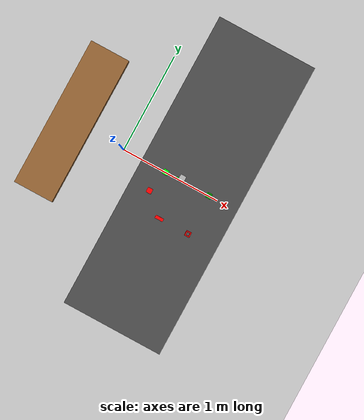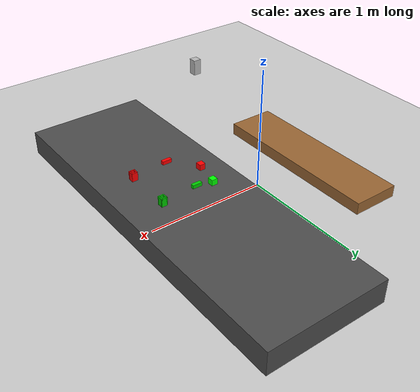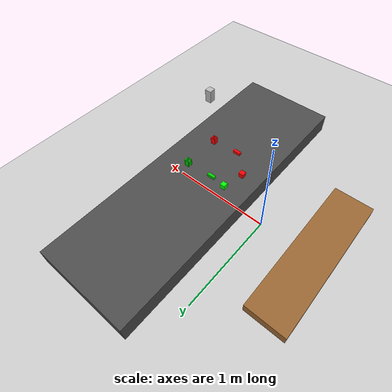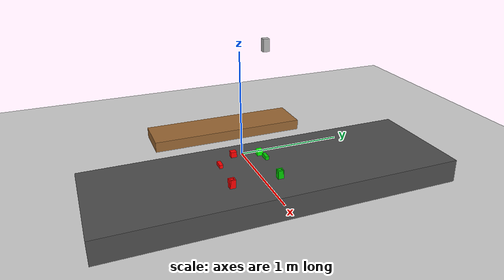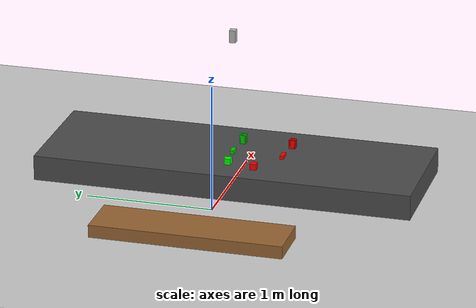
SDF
<?xml version="1.0" ?>
<sdf version="1.8">
  <world name="pick_and_place_world">

    <!-- Physics -->
    <physics name="1ms" type="ignored">
      <max_step_size>0.001</max_step_size>
      <real_time_factor>1.0</real_time_factor>
    </physics>

    <!-- Plugins - Updated for Gazebo Harmonic 8.x -->
    <plugin
      filename="gz-sim-physics-system"
      name="gz::sim::systems::Physics">
    </plugin>
    <plugin
      filename="gz-sim-user-commands-system"
      name="gz::sim::systems::UserCommands">
    </plugin>
    <plugin
      filename="gz-sim-scene-broadcaster-system"
      name="gz::sim::systems::SceneBroadcaster">
    </plugin>
    <plugin
      filename="gz-sim-sensors-system"
      name="gz::sim::systems::Sensors">
      <render_engine>ogre2</render_engine>
    </plugin>
    <plugin
      filename="gz-sim-imu-system"
      name="gz::sim::systems::Imu">
    </plugin>

    <!-- Lighting -->
    <light type="directional" name="sun">
      <cast_shadows>true</cast_shadows>
      <pose>0 0 10 0 0 0</pose>
      <diffuse>0.8 0.8 0.8 1</diffuse>
      <specular>0.2 0.2 0.2 1</specular>
      <attenuation>
        <range>1000</range>
        <constant>0.9</constant>
        <linear>0.01</linear>
        <quadratic>0.001</quadratic>
      </attenuation>
      <direction>-0.5 0.1 -0.9</direction>
    </light>

    <!-- Ground plane -->
    <model name="ground_plane">
      <static>true</static>
      <link name="link">
        <collision name="collision">
          <geometry>
            <plane>
              <normal>0 0 1</normal>
              <size>100 100</size>
            </plane>
          </geometry>
        </collision>
        <visual name="visual">
          <geometry>
            <plane>
              <normal>0 0 1</normal>
              <size>100 100</size>
            </plane>
          </geometry>
          <material>
            <ambient>0.8 0.8 0.8 1</ambient>
            <diffuse>0.8 0.8 0.8 1</diffuse>
            <specular>0.8 0.8 0.8 1</specular>
          </material>
        </visual>
      </link>
    </model>

    <!-- Workbench -->
    <model name="workbench">
      <pose>0.7 0 0.1 0 0 0</pose>
      <static>true</static>
      <link name="link">
        <collision name="collision">
          <geometry>
            <box>
              <size>1.0 3.0 0.2</size>
            </box>
          </geometry>
        </collision>
        <visual name="visual">
          <geometry>
            <box>
              <size>1.0 3.0 0.2</size>
            </box>
          </geometry>
          <material>
            <ambient>0.2 0.2 0.2 1</ambient>
            <diffuse>0.3 0.3 0.3 1</diffuse>
          </material>
        </visual>
      </link>
    </model>

    <!-- Bin bench -->
    <model name="bin_bench">
      <pose>-0.55 0 0.05 0 0 0</pose>
      <static>true</static>
      <link name="link">
        <collision name="collision">
          <geometry>
            <box>
              <size>0.4 1.5 0.1</size>
            </box>
          </geometry>
        </collision>
        <visual name="visual">
          <geometry>
            <box>
              <size>0.4 1.5 0.1</size>
            </box>
          </geometry>
          <material>
            <ambient>0.5 0.3 0.1 1</ambient>
            <diffuse>0.6 0.4 0.2 1</diffuse>
          </material>
        </visual>
      </link>
    </model>

    <!-- Colored bins removed per user request -->

    <!-- Red blocks -->
    <model name="block_red_1">
      <pose>0.4 -0.22 0.225 0 0 0</pose>
      <link name="link">
        <inertial>
          <mass>0.05</mass>
          <inertia>
            <ixx>0.00002</ixx>
            <iyy>0.00002</iyy>
            <izz>0.00002</izz>
          </inertia>
        </inertial>
        <collision name="collision">
          <geometry>
            <box>
              <size>0.05 0.05 0.05</size>
            </box>
          </geometry>
        </collision>
        <visual name="visual">
          <geometry>
            <box>
              <size>0.05 0.05 0.05</size>
            </box>
          </geometry>
          <material>
            <ambient>1 0 0 1</ambient>
            <diffuse>1 0 0 1</diffuse>
          </material>
        </visual>
      </link>
    </model>

    <!-- Green block -->
    <model name="block_green_1">
      <pose>0.45 0.0 0.225 0 0 0</pose>
      <link name="link">
        <inertial>
          <mass>0.05</mass>
          <inertia>
            <ixx>0.00002</ixx>
            <iyy>0.00002</iyy>
            <izz>0.00002</izz>
          </inertia>
        </inertial>
        <collision name="collision">
          <geometry>
            <box>
              <size>0.05 0.05 0.05</size>
            </box>
          </geometry>
        </collision>
        <visual name="visual">
          <geometry>
            <box>
              <size>0.05 0.05 0.05</size>
            </box>
          </geometry>
          <material>
            <ambient>0 1 0 1</ambient>
            <diffuse>0 1 0 1</diffuse>
          </material>
        </visual>
      </link>
    </model>

    <!-- Solid Cuboid for Insertion Task (Red Peg) -->
    <!-- Dimensions: 80mm x 30mm x 30mm -->
    <model name="insertion_peg">
      <pose>0.6 -0.4 0.25 0 0 0</pose>
      <link name="link">
        <inertial>
          <mass>0.1</mass>
          <inertia>
            <ixx>0.00005</ixx>
            <iyy>0.00008</iyy>
            <izz>0.00005</izz>
          </inertia>
        </inertial>
        <collision name="collision">
          <geometry>
            <box>
              <size>0.08 0.03 0.03</size>
            </box>
          </geometry>
        </collision>
        <visual name="visual">
          <geometry>
            <box>
              <size>0.08 0.03 0.03</size>
            </box>
          </geometry>
          <material>
            <ambient>1 0 0 1</ambient>
            <diffuse>1 0 0 1</diffuse>
            <specular>0.5 0.5 0.5 1</specular>
          </material>
        </visual>
      </link>
    </model>

    <!-- Hollow Receptacle for Insertion Task (Red Box) -->
    <!-- Outer dimensions: 80mm x 50mm x 50mm -->
    <!-- Inner cavity: 80mm x 30.5mm x 30.5mm -->
    <!-- Wall thickness: 9.75mm on each side -->
    <!-- Both ends open for insertion -->
    <model name="insertion_receptacle">
      <pose>0.9 -0.4 0.231 0 -1.5708 0</pose>
      <static>true</static>
      <link name="link">
        <inertial>
          <mass>0.2</mass>
          <inertia>
            <ixx>0.0001</ixx>
            <iyy>0.0001</iyy>
            <izz>0.0001</izz>
          </inertia>
        </inertial>

        <!-- Bottom wall: 80mm x 50mm x 9.75mm -->
        <collision name="bottom">
          <pose>0 0 -0.020125 0 0 0</pose>
          <geometry>
            <box>
              <size>0.08 0.05 0.00975</size>
            </box>
          </geometry>
        </collision>
        <visual name="bottom_visual">
          <pose>0 0 -0.020125 0 0 0</pose>
          <geometry>
            <box>
              <size>0.08 0.05 0.00975</size>
            </box>
          </geometry>
          <material>
            <ambient>1 0 0 1</ambient>
            <diffuse>1 0 0 1</diffuse>
          </material>
        </visual>

        <!-- Front wall (open end - removed for insertion) -->
        <!-- No front wall - open for insertion -->

        <!-- Back wall (open end - removed for insertion) -->
        <!-- No back wall - both ends open -->

        <!-- Left wall: 80mm x 9.75mm x 50mm -->
        <collision name="left_wall">
          <pose>0 0.020125 0 0 0 0</pose>
          <geometry>
            <box>
              <size>0.08 0.00975 0.05</size>
            </box>
          </geometry>
        </collision>
        <visual name="left_wall_visual">
          <pose>0 0.020125 0 0 0 0</pose>
          <geometry>
            <box>
              <size>0.08 0.00975 0.05</size>
            </box>
          </geometry>
          <material>
            <ambient>1 0 0 1</ambient>
            <diffuse>1 0 0 1</diffuse>
          </material>
        </visual>

        <!-- Right wall: 80mm x 9.75mm x 50mm -->
        <collision name="right_wall">
          <pose>0 -0.020125 0 0 0 0</pose>
          <geometry>
            <box>
              <size>0.08 0.00975 0.05</size>
            </box>
          </geometry>
        </collision>
        <visual name="right_wall_visual">
          <pose>0 -0.020125 0 0 0 0</pose>
          <geometry>
            <box>
              <size>0.08 0.00975 0.05</size>
            </box>
          </geometry>
          <material>
            <ambient>1 0 0 1</ambient>
            <diffuse>1 0 0 1</diffuse>
          </material>
        </visual>

        <!-- Top wall: 80mm x 50mm x 9.75mm -->
        <collision name="top_wall">
          <pose>0 0 0.020125 0 0 0</pose>
          <geometry>
            <box>
              <size>0.08 0.05 0.00975</size>
            </box>
          </geometry>
        </collision>
        <visual name="top_wall_visual">
          <pose>0 0 0.020125 0 0 0</pose>
          <geometry>
            <box>
              <size>0.08 0.05 0.00975</size>
            </box>
          </geometry>
          <material>
            <ambient>1 0 0 1</ambient>
            <diffuse>1 0 0 1</diffuse>
          </material>
        </visual>
      </link>
    </model>

    <!-- Solid Cuboid for Insertion Task (Green Peg) -->
    <!-- Dimensions: 80mm x 30mm x 30mm -->
    <model name="insertion_peg_green">
      <pose>0.6 0.0 0.25 0 0 0</pose>
      <link name="link">
        <inertial>
          <mass>0.1</mass>
          <inertia>
            <ixx>0.00005</ixx>
            <iyy>0.00008</iyy>
            <izz>0.00005</izz>
          </inertia>
        </inertial>
        <collision name="collision">
          <geometry>
            <box>
              <size>0.08 0.03 0.03</size>
            </box>
          </geometry>
        </collision>
        <visual name="visual">
          <geometry>
            <box>
              <size>0.08 0.03 0.03</size>
            </box>
          </geometry>
          <material>
            <ambient>0 0.6 0 1</ambient>
            <diffuse>0 0.8 0 1</diffuse>
            <specular>0.2 0.2 0.2 1</specular>
          </material>
        </visual>
      </link>
    </model>

    <!-- Hollow Receptacle for Insertion Task (Green Box) -->
    <!-- Outer: 80mm x 50mm x 50mm, Inner: 80mm x 30.5mm x 30.5mm -->
    <model name="insertion_receptacle_green">
      <pose>0.9 0.0 0.231 0 -1.5708 0</pose>
      <static>true</static>
      <link name="link">
        <inertial>
          <mass>0.2</mass>
          <inertia>
            <ixx>0.0001</ixx>
            <iyy>0.0001</iyy>
            <izz>0.0001</izz>
          </inertia>
        </inertial>

        <!-- Bottom wall -->
        <collision name="bottom">
          <pose>0 0 -0.020125 0 0 0</pose>
          <geometry>
            <box>
              <size>0.08 0.05 0.00975</size>
            </box>
          </geometry>
        </collision>
        <visual name="bottom_visual">
          <pose>0 0 -0.020125 0 0 0</pose>
          <geometry>
            <box>
              <size>0.08 0.05 0.00975</size>
            </box>
          </geometry>
          <material>
            <ambient>0 0.6 0 1</ambient>
            <diffuse>0 0.8 0 1</diffuse>
          </material>
        </visual>

        <!-- Left wall -->
        <collision name="left_wall">
          <pose>0 0.020125 0 0 0 0</pose>
          <geometry>
            <box>
              <size>0.08 0.00975 0.05</size>
            </box>
          </geometry>
        </collision>
        <visual name="left_wall_visual">
          <pose>0 0.020125 0 0 0 0</pose>
          <geometry>
            <box>
              <size>0.08 0.00975 0.05</size>
            </box>
          </geometry>
          <material>
            <ambient>0 0.6 0 1</ambient>
            <diffuse>0 0.8 0 1</diffuse>
          </material>
        </visual>

        <!-- Right wall -->
        <collision name="right_wall">
          <pose>0 -0.020125 0 0 0 0</pose>
          <geometry>
            <box>
              <size>0.08 0.00975 0.05</size>
            </box>
          </geometry>
        </collision>
        <visual name="right_wall_visual">
          <pose>0 -0.020125 0 0 0 0</pose>
          <geometry>
            <box>
              <size>0.08 0.00975 0.05</size>
            </box>
          </geometry>
          <material>
            <ambient>0 0.6 0 1</ambient>
            <diffuse>0 0.8 0 1</diffuse>
          </material>
        </visual>

        <!-- Top wall -->
        <collision name="top_wall">
          <pose>0 0 0.020125 0 0 0</pose>
          <geometry>
            <box>
              <size>0.08 0.05 0.00975</size>
            </box>
          </geometry>
        </collision>
        <visual name="top_wall_visual">
          <pose>0 0 0.020125 0 0 0</pose>
          <geometry>
            <box>
              <size>0.08 0.05 0.00975</size>
            </box>
          </geometry>
          <material>
            <ambient>0 0.6 0 1</ambient>
            <diffuse>0 0.8 0 1</diffuse>
          </material>
        </visual>
      </link>
    </model>

    <!-- RGB-D Camera -->
    <model name="rgbd_camera">
      <pose>0.6 0 1.2 0 1.57 0</pose>
      <static>true</static>
      <link name="link">
        <visual name="visual">
          <geometry>
            <box>
              <size>0.1 0.05 0.05</size>
            </box>
          </geometry>
        </visual>

        <!-- RGB Camera -->
        <sensor name="camera" type="camera">
          <camera>
            <horizontal_fov>1.047</horizontal_fov>
            <image>
              <width>640</width>
              <height>480</height>
            </image>
            <clip>
              <near>0.1</near>
              <far>100</far>
            </clip>
          </camera>
          <always_on>1</always_on>
          <update_rate>30</update_rate>
          <visualize>true</visualize>
          <topic>/camera/color/image_raw</topic>
        </sensor>

        <!-- Depth Camera -->
        <sensor name="depth_camera" type="depth_camera">
          <camera>
            <horizontal_fov>1.047</horizontal_fov>
            <image>
              <width>640</width>
              <height>480</height>
            </image>
            <clip>
              <near>0.1</near>
              <far>10</far>
            </clip>
          </camera>
          <always_on>1</always_on>
          <update_rate>30</update_rate>
          <visualize>false</visualize>
          <topic>/camera/depth/image_raw</topic>
        </sensor>
      </link>
    </model>

  </world>
</sdf>
